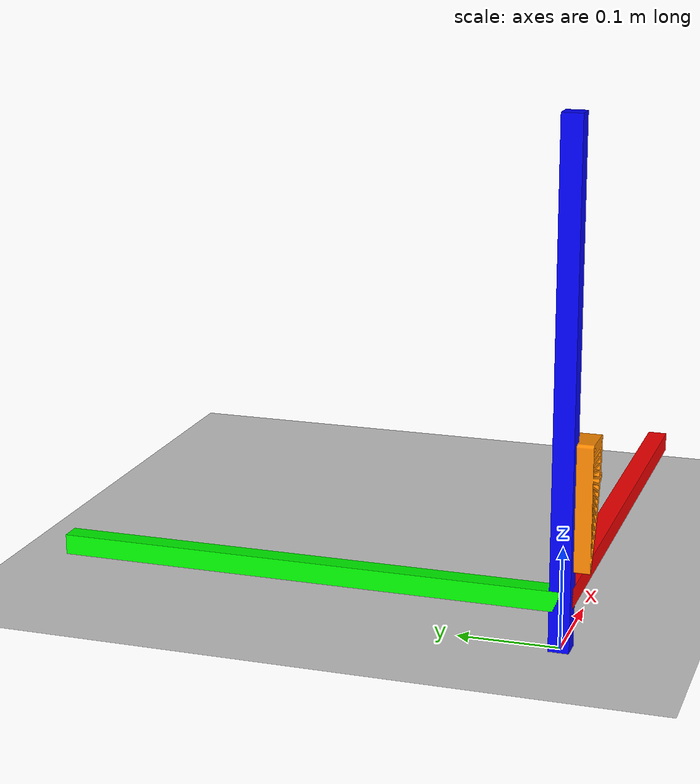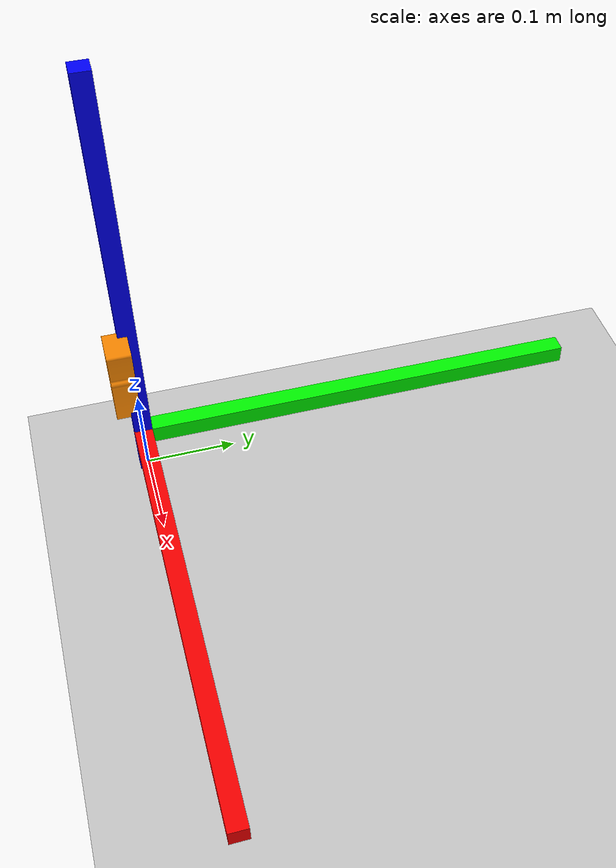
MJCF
<mujoco model="mesh_test">
    <compiler angle="radian"
              meshdir="/path/to/Intervention_IL_AR/intervene_base/mujoco_scenes/assets"/>

    <asset>
        <mesh name="soft_finger"
              file="soft_gripper_finger.stl"
              scale="0.001 0.001 0.001"/>
    </asset>

    <worldbody>
        <light pos="0 0 2"/>

        <geom name="floor" type="plane" size="2 2 0.1" rgba="0.8 0.8 0.8 1"/>

        <!-- red +X -->
        <geom name="x_axis" type="box"
              pos="0.25 0 0.05"
              size="0.25 0.01 0.01"
              rgba="1 0 0 1"/>

        <!-- green +Y -->
        <geom name="y_axis" type="box"
              pos="0 0.25 0.05"
              size="0.01 0.25 0.01"
              rgba="0 1 0 1"/>

        <!-- blue +Z -->
        <geom name="z_axis" type="box"
              pos="0 0 0.25"
              size="0.01 0.01 0.25"
              rgba="0 0 1 1"/>

        <body name="finger_test" pos="0 0 0.2">
            <geom name="finger_mesh"
                  type="mesh"
                  mesh="soft_finger"
                  rgba="1 0.54 0 1"/>
        </body>
    </worldbody>
</mujoco>
